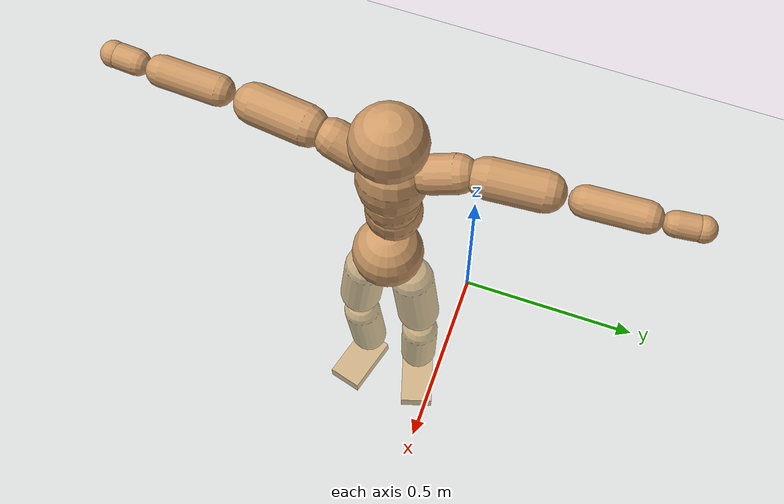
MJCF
<mujoco model="humanoid">
  <compiler coordinate="local"/>
  <default>
    <joint damping="0.0" armature="0.01" stiffness="0.0" limited="true"/>
    <geom conaffinity="1" condim="3" contype="7" margin="0.001" rgba="0.8 0.6 .4 1"/>
  </default>
  <asset>
    <texture type="skybox" builtin="gradient" rgb1=".4 .5 .6" rgb2="0 0 0" width="100" height="100"/>
    <texture builtin="flat" height="1278" mark="cross" markrgb="1 1 1" name="texgeom" random="0.01" rgb1="0.8 0.6 0.4" rgb2="0.8 0.6 0.4" type="cube" width="127"/>
    <texture builtin="checker" height="100" name="texplane" rgb1="0 0 0" rgb2="0.8 0.8 0.8" type="2d" width="100"/>
    <material name="MatPlane" reflectance="0.5" shininess="1" specular="1" texrepeat="60 60" texture="texplane"/>
    <material name="geom" texture="texgeom" texuniform="true"/>
  </asset>
  <worldbody>
    <light cutoff="100" diffuse="1 1 1" dir="-0 0 -1.3" directional="true" exponent="1" pos="0 0 1.3" specular=".1 .1 .1"/>
    <geom conaffinity="1" condim="3" name="floor" pos="0 0 0" rgba="0.8 0.9 0.8 1" size="100 100 .2" type="plane" material="MatPlane"/>
    <body name="Pelvis" pos="-0.0014 -0.2502 0.0411">
      <freejoint name="Pelvis"/>
      <geom type="sphere" contype="1" conaffinity="1" density="500" size="0.1078" pos="0.0000 0.0000 0.0000" name="Pelvis"/>
      <body name="L_Hip" pos="-0.0125 0.0653 -0.0856">
        <joint name="L_Hip_x" type="hinge" pos="0 0 0" axis="1 0 0" stiffness="800" damping="80" armature="0.02" range="-180.0000 180.0000"/>
        <joint name="L_Hip_y" type="hinge" pos="0 0 0" axis="0 1 0" stiffness="800" damping="80" armature="0.02" range="-180.0000 180.0000"/>
        <joint name="L_Hip_z" type="hinge" pos="0 0 0" axis="0 0 1" stiffness="800" damping="80" armature="0.02" range="-180.0000 180.0000"/>
        <geom type="capsule" contype="1" conaffinity="1" density="500" fromto="0.0010 0.0079 -0.0763 0.0042 0.0318 -0.3051" size="0.0667" name="L_Hip"/>
        <body name="L_Knee" pos="0.0052 0.0397 -0.3814">
          <joint name="L_Knee_x" type="hinge" pos="0 0 0" axis="1 0 0" stiffness="800" damping="80" armature="0.02" range="-180.0000 180.0000"/>
          <joint name="L_Knee_y" type="hinge" pos="0 0 0" axis="0 1 0" stiffness="800" damping="80" armature="0.02" range="-180.0000 180.0000"/>
          <joint name="L_Knee_z" type="hinge" pos="0 0 0" axis="0 0 1" stiffness="800" damping="80" armature="0.02" range="-180.0000 180.0000"/>
          <geom type="capsule" contype="1" conaffinity="1" density="500" fromto="-0.0082 -0.0035 -0.0878 -0.0330 -0.0140 -0.3510" size="0.0593" name="L_Knee"/>
          <body name="L_Ankle" pos="-0.0412 -0.0175 -0.4388">
            <joint name="L_Ankle_x" type="hinge" pos="0 0 0" axis="1 0 0" stiffness="800" damping="80" armature="0.02" range="-180.0000 180.0000"/>
            <joint name="L_Ankle_y" type="hinge" pos="0 0 0" axis="0 1 0" stiffness="800" damping="80" armature="0.02" range="-180.0000 180.0000"/>
            <joint name="L_Ankle_z" type="hinge" pos="0 0 0" axis="0 0 1" stiffness="800" damping="80" armature="0.02" range="-180.0000 180.0000"/>
            <geom type="box" contype="1" conaffinity="1" density="500" pos="0.0639 0.0192 -0.0309" size="0.0943 0.0529 0.0237" quat="0.9893 0.0000 0.0000 0.1458" name="L_Ankle"/>
            <body name="L_Toe" pos="0.1278 0.0385 -0.0618">
              <joint name="L_Toe_x" type="hinge" pos="0 0 0" axis="1 0 0" stiffness="500" damping="50" armature="0.02" range="-180.0000 180.0000"/>
              <joint name="L_Toe_y" type="hinge" pos="0 0 0" axis="0 1 0" stiffness="500" damping="50" armature="0.02" range="-180.0000 180.0000"/>
              <joint name="L_Toe_z" type="hinge" pos="0 0 0" axis="0 0 1" stiffness="500" damping="50" armature="0.02" range="-180.0000 180.0000"/>
              <geom type="box" contype="1" conaffinity="1" density="500" pos="0.0000 0.0000 0.0296" size="0.0011 0.0026 0.0011" quat="0.9886 0.0000 0.0000 0.1506" name="L_Toe"/>
            </body>
          </body>
        </body>
      </body>
      <body name="R_Hip" pos="-0.007 -0.067 -0.0945">
        <joint name="R_Hip_x" type="hinge" pos="0 0 0" axis="1 0 0" stiffness="800" damping="80" armature="0.02" range="-180.0000 180.0000"/>
        <joint name="R_Hip_y" type="hinge" pos="0 0 0" axis="0 1 0" stiffness="800" damping="80" armature="0.02" range="-180.0000 180.0000"/>
        <joint name="R_Hip_z" type="hinge" pos="0 0 0" axis="0 0 1" stiffness="800" damping="80" armature="0.02" range="-180.0000 180.0000"/>
        <geom type="capsule" contype="1" conaffinity="1" density="500" fromto="-0.0016 -0.0082 -0.0764 -0.0064 -0.0329 -0.3055" size="0.0664" name="R_Hip"/>
        <body name="R_Knee" pos="-0.008 -0.0411 -0.3819">
          <joint name="R_Knee_x" type="hinge" pos="0 0 0" axis="1 0 0" stiffness="800" damping="80" armature="0.02" range="-180.0000 180.0000"/>
          <joint name="R_Knee_y" type="hinge" pos="0 0 0" axis="0 1 0" stiffness="800" damping="80" armature="0.02" range="-180.0000 180.0000"/>
          <joint name="R_Knee_z" type="hinge" pos="0 0 0" axis="0 0 1" stiffness="800" damping="80" armature="0.02" range="-180.0000 180.0000"/>
          <geom type="capsule" contype="1" conaffinity="1" density="500" fromto="-0.0077 0.0040 -0.0863 -0.0307 0.0161 -0.3452" size="0.0594" name="R_Knee"/>
          <body name="R_Ankle" pos="-0.0384 0.0201 -0.4316">
            <joint name="R_Ankle_x" type="hinge" pos="0 0 0" axis="1 0 0" stiffness="800" damping="80" armature="0.02" range="-180.0000 180.0000"/>
            <joint name="R_Ankle_y" type="hinge" pos="0 0 0" axis="0 1 0" stiffness="800" damping="80" armature="0.02" range="-180.0000 180.0000"/>
            <joint name="R_Ankle_z" type="hinge" pos="0 0 0" axis="0 0 1" stiffness="800" damping="80" armature="0.02" range="-180.0000 180.0000"/>
            <geom type="box" contype="1" conaffinity="1" density="500" pos="0.0681 -0.0188 -0.0313" size="0.0952 0.0549 0.0232" quat="0.9909 0.0000 0.0000 -0.1345" name="R_Ankle"/>
            <body name="R_Toe" pos="0.1363 -0.0377 -0.0627">
              <joint name="R_Toe_x" type="hinge" pos="0 0 0" axis="1 0 0" stiffness="500" damping="50" armature="0.02" range="-180.0000 180.0000"/>
              <joint name="R_Toe_y" type="hinge" pos="0 0 0" axis="0 1 0" stiffness="500" damping="50" armature="0.02" range="-180.0000 180.0000"/>
              <joint name="R_Toe_z" type="hinge" pos="0 0 0" axis="0 0 1" stiffness="500" damping="50" armature="0.02" range="-180.0000 180.0000"/>
              <geom type="box" contype="1" conaffinity="1" density="500" pos="0.0000 0.0000 0.0321" size="0.0012 0.0027 0.0012" quat="0.9920 0.0000 0.0000 -0.1260" name="R_Toe"/>
            </body>
          </body>
        </body>
      </body>
      <body name="Torso" pos="-0.0489 0.0048 0.132">
        <joint name="Torso_x" type="hinge" pos="0 0 0" axis="1 0 0" stiffness="1000" damping="100" armature="0.02" range="-180.0000 180.0000"/>
        <joint name="Torso_y" type="hinge" pos="0 0 0" axis="0 1 0" stiffness="1000" damping="100" armature="0.02" range="-180.0000 180.0000"/>
        <joint name="Torso_z" type="hinge" pos="0 0 0" axis="0 0 1" stiffness="1000" damping="100" armature="0.02" range="-180.0000 180.0000"/>
        <geom type="capsule" contype="1" conaffinity="1" density="500" fromto="0.0149 0.0027 0.0826 0.0099 0.0018 0.0551" size="0.084537" name="Torso"/>
        <body name="Spine" pos="0.0248 0.0045 0.1376">
          <joint name="Spine_x" type="hinge" pos="0 0 0" axis="1 0 0" stiffness="1000" damping="100" armature="0.02" range="-180.0000 180.0000"/>
          <joint name="Spine_y" type="hinge" pos="0 0 0" axis="0 1 0" stiffness="1000" damping="100" armature="0.02" range="-180.0000 180.0000"/>
          <joint name="Spine_z" type="hinge" pos="0 0 0" axis="0 0 1" stiffness="1000" damping="100" armature="0.02" range="-180.0000 180.0000"/>
          <geom type="capsule" contype="1" conaffinity="1" density="500" fromto="0.0025 -0.0019 0.0339 0.0016 -0.0013 0.0226" size="0.082584" name="Spine"/>
          <body name="Chest" pos="0.0041 -0.0031 0.0565">
            <joint name="Chest_x" type="hinge" pos="0 0 0" axis="1 0 0" stiffness="1000" damping="100" armature="0.02" range="-180.0000 180.0000"/>
            <joint name="Chest_y" type="hinge" pos="0 0 0" axis="0 1 0" stiffness="1000" damping="100" armature="0.02" range="-180.0000 180.0000"/>
            <joint name="Chest_z" type="hinge" pos="0 0 0" axis="0 0 1" stiffness="1000" damping="100" armature="0.02" range="-180.0000 180.0000"/>
            <geom type="capsule" contype="1" conaffinity="1" density="500" fromto="-0.0182 -0.0046 0.0922 -0.0121 -0.0031 0.0614" size="0.102672" name="Chest"/>
            <body name="Neck" pos="-0.0411 -0.0124 0.2212">
              <joint name="Neck_x" type="hinge" pos="0 0 0" axis="1 0 0" stiffness="500" damping="50" armature="0.02" range="-180.0000 180.0000"/>
              <joint name="Neck_y" type="hinge" pos="0 0 0" axis="0 1 0" stiffness="500" damping="50" armature="0.02" range="-180.0000 180.0000"/>
              <joint name="Neck_z" type="hinge" pos="0 0 0" axis="0 0 1" stiffness="500" damping="50" armature="0.02" range="-180.0000 180.0000"/>
              <geom type="capsule" contype="1" conaffinity="1" density="500" fromto="0.0104 0.0021 0.0169 0.0414 0.0084 0.0677" size="0.044454" name="Neck"/>
              <body name="Head" pos="0.0518 0.0105 0.0847">
                <joint name="Head_x" type="hinge" pos="0 0 0" axis="1 0 0" stiffness="500" damping="50" armature="0.02" range="-180.0000 180.0000"/>
                <joint name="Head_y" type="hinge" pos="0 0 0" axis="0 1 0" stiffness="500" damping="50" armature="0.02" range="-180.0000 180.0000"/>
                <joint name="Head_z" type="hinge" pos="0 0 0" axis="0 0 1" stiffness="500" damping="50" armature="0.02" range="-180.0000 180.0000"/>
                <geom type="sphere" contype="1" conaffinity="1" density="500" size="0.1093" pos="0.0000 0.0000 0.0000" name="Head"/>
              </body>
            </body>
            <body name="L_Thorax" pos="-0.0228 0.0735 0.1206">
              <joint name="L_Thorax_x" type="hinge" pos="0 0 0" axis="1 0 0" stiffness="500" damping="50" armature="0.02" range="-180.0000 180.0000"/>
              <joint name="L_Thorax_y" type="hinge" pos="0 0 0" axis="0 1 0" stiffness="500" damping="50" armature="0.02" range="-180.0000 180.0000"/>
              <joint name="L_Thorax_z" type="hinge" pos="0 0 0" axis="0 0 1" stiffness="500" damping="50" armature="0.02" range="-180.0000 180.0000"/>
              <geom type="capsule" contype="1" conaffinity="1" density="500" fromto="-0.0045 0.0254 0.0087 -0.0178 0.1015 0.0350" size="0.0565" name="L_Thorax"/>
              <body name="L_Shoulder" pos="-0.0223 0.1268 0.0437">
                <joint name="L_Shoulder_x" type="hinge" pos="0 0 0" axis="1 0 0" stiffness="500" damping="50" armature="0.02" range="-720.0000 720.0000"/>
                <joint name="L_Shoulder_y" type="hinge" pos="0 0 0" axis="0 1 0" stiffness="500" damping="50" armature="0.02" range="-720.0000 720.0000"/>
                <joint name="L_Shoulder_z" type="hinge" pos="0 0 0" axis="0 0 1" stiffness="500" damping="50" armature="0.02" range="-720.0000 720.0000"/>
                <geom type="capsule" contype="1" conaffinity="1" density="500" fromto="-0.0054 0.0524 -0.0029 -0.0215 0.2098 -0.0115" size="0.0594" name="L_Shoulder"/>
                <body name="L_Elbow" pos="-0.0268 0.2622 -0.0143">
                  <joint name="L_Elbow_x" type="hinge" pos="0 0 0" axis="1 0 0" stiffness="500" damping="50" armature="0.02" range="-720.0000 720.0000"/>
                  <joint name="L_Elbow_y" type="hinge" pos="0 0 0" axis="0 1 0" stiffness="500" damping="50" armature="0.02" range="-720.0000 720.0000"/>
                  <joint name="L_Elbow_z" type="hinge" pos="0 0 0" axis="0 0 1" stiffness="500" damping="50" armature="0.02" range="-720.0000 720.0000"/>
                  <geom type="capsule" contype="1" conaffinity="1" density="500" fromto="-0.0013 0.0558 0.0029 -0.0050 0.2233 0.0115" size="0.0458" name="L_Elbow"/>
                  <body name="L_Wrist" pos="-0.0063 0.2791 0.0144">
                    <joint name="L_Wrist_x" type="hinge" pos="0 0 0" axis="1 0 0" stiffness="300" damping="30" armature="0.02" range="-180.0000 180.0000"/>
                    <joint name="L_Wrist_y" type="hinge" pos="0 0 0" axis="0 1 0" stiffness="300" damping="30" armature="0.02" range="-180.0000 180.0000"/>
                    <joint name="L_Wrist_z" type="hinge" pos="0 0 0" axis="0 0 1" stiffness="300" damping="30" armature="0.02" range="-180.0000 180.0000"/>
                    <geom type="capsule" contype="1" conaffinity="1" density="500" fromto="-0.0033 0.0186 -0.0023 -0.0134 0.0742 -0.0090" size="0.0367" name="L_Wrist"/>
                    <body name="L_Hand" pos="-0.0167 0.0928 -0.0113">
                      <joint name="L_Hand_x" type="hinge" pos="0 0 0" axis="1 0 0" stiffness="300" damping="30" armature="0.02" range="-180.0000 180.0000"/>
                      <joint name="L_Hand_y" type="hinge" pos="0 0 0" axis="0 1 0" stiffness="300" damping="30" armature="0.02" range="-180.0000 180.0000"/>
                      <joint name="L_Hand_z" type="hinge" pos="0 0 0" axis="0 0 1" stiffness="300" damping="30" armature="0.02" range="-180.0000 180.0000"/>
                      <geom type="sphere" contype="1" conaffinity="1" density="500" size="0.0381" pos="0.0000 0.0000 0.0000" name="L_Hand"/>
                    </body>
                  </body>
                </body>
              </body>
            </body>
            <body name="R_Thorax" pos="-0.0269 -0.084 0.119">
              <joint name="R_Thorax_x" type="hinge" pos="0 0 0" axis="1 0 0" stiffness="500" damping="50" armature="0.02" range="-180.0000 180.0000"/>
              <joint name="R_Thorax_y" type="hinge" pos="0 0 0" axis="0 1 0" stiffness="500" damping="50" armature="0.02" range="-180.0000 180.0000"/>
              <joint name="R_Thorax_z" type="hinge" pos="0 0 0" axis="0 0 1" stiffness="500" damping="50" armature="0.02" range="-180.0000 180.0000"/>
              <geom type="capsule" contype="1" conaffinity="1" density="500" fromto="-0.0021 -0.0234 0.0091 -0.0084 -0.0937 0.0364" size="0.0565" name="R_Thorax"/>
              <body name="R_Shoulder" pos="-0.0105 -0.1172 0.0455">
                <joint name="R_Shoulder_x" type="hinge" pos="0 0 0" axis="1 0 0" stiffness="500" damping="50" armature="0.02" range="-720.0000 720.0000"/>
                <joint name="R_Shoulder_y" type="hinge" pos="0 0 0" axis="0 1 0" stiffness="500" damping="50" armature="0.02" range="-720.0000 720.0000"/>
                <joint name="R_Shoulder_z" type="hinge" pos="0 0 0" axis="0 0 1" stiffness="500" damping="50" armature="0.02" range="-720.0000 720.0000"/>
                <geom type="capsule" contype="1" conaffinity="1" density="500" fromto="-0.0073 -0.0541 -0.0023 -0.0291 -0.2164 -0.0091" size="0.0601" name="R_Shoulder"/>
                <body name="R_Elbow" pos="-0.0363 -0.2705 -0.0114">
                  <joint name="R_Elbow_x" type="hinge" pos="0 0 0" axis="1 0 0" stiffness="500" damping="50" armature="0.02" range="-720.0000 720.0000"/>
                  <joint name="R_Elbow_y" type="hinge" pos="0 0 0" axis="0 1 0" stiffness="500" damping="50" armature="0.02" range="-720.0000 720.0000"/>
                  <joint name="R_Elbow_z" type="hinge" pos="0 0 0" axis="0 0 1" stiffness="500" damping="50" armature="0.02" range="-720.0000 720.0000"/>
                  <geom type="capsule" contype="1" conaffinity="1" density="500" fromto="-0.0013 -0.0563 0.0014 -0.0053 -0.2251 0.0058" size="0.0466" name="R_Elbow"/>
                  <body name="R_Wrist" pos="-0.0067 -0.2814 0.0072">
                    <joint name="R_Wrist_x" type="hinge" pos="0 0 0" axis="1 0 0" stiffness="300" damping="30" armature="0.02" range="-180.0000 180.0000"/>
                    <joint name="R_Wrist_y" type="hinge" pos="0 0 0" axis="0 1 0" stiffness="300" damping="30" armature="0.02" range="-180.0000 180.0000"/>
                    <joint name="R_Wrist_z" type="hinge" pos="0 0 0" axis="0 0 1" stiffness="300" damping="30" armature="0.02" range="-180.0000 180.0000"/>
                    <geom type="capsule" contype="1" conaffinity="1" density="500" fromto="-0.0021 -0.0191 -0.0019 -0.0086 -0.0765 -0.0076" size="0.0378" name="R_Wrist"/>
                    <body name="R_Hand" pos="-0.0107 -0.0956 -0.0095">
                      <joint name="R_Hand_x" type="hinge" pos="0 0 0" axis="1 0 0" stiffness="300" damping="30" armature="0.02" range="-180.0000 180.0000"/>
                      <joint name="R_Hand_y" type="hinge" pos="0 0 0" axis="0 1 0" stiffness="300" damping="30" armature="0.02" range="-180.0000 180.0000"/>
                      <joint name="R_Hand_z" type="hinge" pos="0 0 0" axis="0 0 1" stiffness="300" damping="30" armature="0.02" range="-180.0000 180.0000"/>
                      <geom type="sphere" contype="1" conaffinity="1" density="500" size="0.0390" pos="0.0000 0.0000 0.0000" name="R_Hand"/>
                    </body>
                  </body>
                </body>
              </body>
            </body>
          </body>
        </body>
      </body>
    </body>
  </worldbody>
  <actuator>
    <motor name="L_Hip_x" joint="L_Hip_x" gear="500"/>
    <motor name="L_Hip_y" joint="L_Hip_y" gear="500"/>
    <motor name="L_Hip_z" joint="L_Hip_z" gear="500"/>
    <motor name="L_Knee_x" joint="L_Knee_x" gear="500"/>
    <motor name="L_Knee_y" joint="L_Knee_y" gear="500"/>
    <motor name="L_Knee_z" joint="L_Knee_z" gear="500"/>
    <motor name="L_Ankle_x" joint="L_Ankle_x" gear="500"/>
    <motor name="L_Ankle_y" joint="L_Ankle_y" gear="500"/>
    <motor name="L_Ankle_z" joint="L_Ankle_z" gear="500"/>
    <motor name="L_Toe_x" joint="L_Toe_x" gear="500"/>
    <motor name="L_Toe_y" joint="L_Toe_y" gear="500"/>
    <motor name="L_Toe_z" joint="L_Toe_z" gear="500"/>
    <motor name="R_Hip_x" joint="R_Hip_x" gear="500"/>
    <motor name="R_Hip_y" joint="R_Hip_y" gear="500"/>
    <motor name="R_Hip_z" joint="R_Hip_z" gear="500"/>
    <motor name="R_Knee_x" joint="R_Knee_x" gear="500"/>
    <motor name="R_Knee_y" joint="R_Knee_y" gear="500"/>
    <motor name="R_Knee_z" joint="R_Knee_z" gear="500"/>
    <motor name="R_Ankle_x" joint="R_Ankle_x" gear="500"/>
    <motor name="R_Ankle_y" joint="R_Ankle_y" gear="500"/>
    <motor name="R_Ankle_z" joint="R_Ankle_z" gear="500"/>
    <motor name="R_Toe_x" joint="R_Toe_x" gear="500"/>
    <motor name="R_Toe_y" joint="R_Toe_y" gear="500"/>
    <motor name="R_Toe_z" joint="R_Toe_z" gear="500"/>
    <motor name="Torso_x" joint="Torso_x" gear="500"/>
    <motor name="Torso_y" joint="Torso_y" gear="500"/>
    <motor name="Torso_z" joint="Torso_z" gear="500"/>
    <motor name="Spine_x" joint="Spine_x" gear="500"/>
    <motor name="Spine_y" joint="Spine_y" gear="500"/>
    <motor name="Spine_z" joint="Spine_z" gear="500"/>
    <motor name="Chest_x" joint="Chest_x" gear="500"/>
    <motor name="Chest_y" joint="Chest_y" gear="500"/>
    <motor name="Chest_z" joint="Chest_z" gear="500"/>
    <motor name="Neck_x" joint="Neck_x" gear="500"/>
    <motor name="Neck_y" joint="Neck_y" gear="500"/>
    <motor name="Neck_z" joint="Neck_z" gear="500"/>
    <motor name="Head_x" joint="Head_x" gear="500"/>
    <motor name="Head_y" joint="Head_y" gear="500"/>
    <motor name="Head_z" joint="Head_z" gear="500"/>
    <motor name="L_Thorax_x" joint="L_Thorax_x" gear="500"/>
    <motor name="L_Thorax_y" joint="L_Thorax_y" gear="500"/>
    <motor name="L_Thorax_z" joint="L_Thorax_z" gear="500"/>
    <motor name="L_Shoulder_x" joint="L_Shoulder_x" gear="500"/>
    <motor name="L_Shoulder_y" joint="L_Shoulder_y" gear="500"/>
    <motor name="L_Shoulder_z" joint="L_Shoulder_z" gear="500"/>
    <motor name="L_Elbow_x" joint="L_Elbow_x" gear="500"/>
    <motor name="L_Elbow_y" joint="L_Elbow_y" gear="500"/>
    <motor name="L_Elbow_z" joint="L_Elbow_z" gear="500"/>
    <motor name="L_Wrist_x" joint="L_Wrist_x" gear="500"/>
    <motor name="L_Wrist_y" joint="L_Wrist_y" gear="500"/>
    <motor name="L_Wrist_z" joint="L_Wrist_z" gear="500"/>
    <motor name="L_Hand_x" joint="L_Hand_x" gear="500"/>
    <motor name="L_Hand_y" joint="L_Hand_y" gear="500"/>
    <motor name="L_Hand_z" joint="L_Hand_z" gear="500"/>
    <motor name="R_Thorax_x" joint="R_Thorax_x" gear="500"/>
    <motor name="R_Thorax_y" joint="R_Thorax_y" gear="500"/>
    <motor name="R_Thorax_z" joint="R_Thorax_z" gear="500"/>
    <motor name="R_Shoulder_x" joint="R_Shoulder_x" gear="500"/>
    <motor name="R_Shoulder_y" joint="R_Shoulder_y" gear="500"/>
    <motor name="R_Shoulder_z" joint="R_Shoulder_z" gear="500"/>
    <motor name="R_Elbow_x" joint="R_Elbow_x" gear="500"/>
    <motor name="R_Elbow_y" joint="R_Elbow_y" gear="500"/>
    <motor name="R_Elbow_z" joint="R_Elbow_z" gear="500"/>
    <motor name="R_Wrist_x" joint="R_Wrist_x" gear="500"/>
    <motor name="R_Wrist_y" joint="R_Wrist_y" gear="500"/>
    <motor name="R_Wrist_z" joint="R_Wrist_z" gear="500"/>
    <motor name="R_Hand_x" joint="R_Hand_x" gear="500"/>
    <motor name="R_Hand_y" joint="R_Hand_y" gear="500"/>
    <motor name="R_Hand_z" joint="R_Hand_z" gear="500"/>
  </actuator>
  <contact>
    <exclude body1="Torso" body2="Chest"/>
    <exclude body1="Head" body2="Chest"/>
    <exclude body1="R_Knee" body2="R_Toe"/>
    <exclude body1="R_Knee" body2="L_Ankle"/>
    <exclude body1="R_Knee" body2="L_Toe"/>
    <exclude body1="L_Knee" body2="L_Toe"/>
    <exclude body1="L_Knee" body2="R_Ankle"/>
    <exclude body1="L_Knee" body2="R_Toe"/>
    <exclude body1="L_Shoulder" body2="Chest"/>
    <exclude body1="R_Shoulder" body2="Chest"/>
  </contact>
  <sensor/>
  <size njmax="700" nconmax="700"/>
</mujoco>
